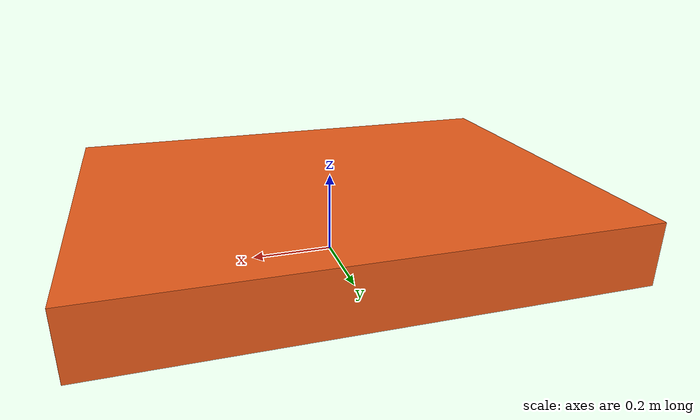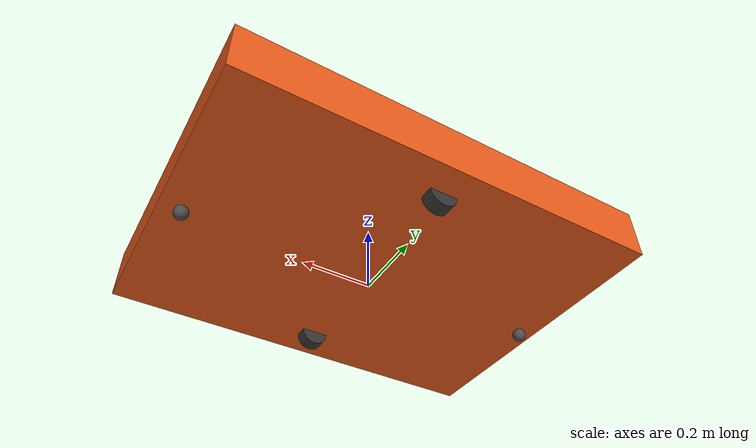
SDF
<?xml version="1.0" ?>
<sdf version="1.9">
  <model name="Addverb_Quadron">
    <self_collide>false</self_collide>

    <!-- ══ Chassis ══ -->
    <link name="chassis">
      <pose>0 0 0.115000 0 0 0</pose>
      <inertial>
        <mass>80.0</mass>
        <inertia>
          <ixx>5.550000</ixx><ixy>0</ixy><ixz>0</ixz>
          <iyy>9.750000</iyy><iyz>0</iyz>
          <izz>15.000000</izz>
        </inertia>
      </inertial>
      <visual name="chassis_visual">
        <geometry><box><size>1.2 0.9 0.15</size></box></geometry>
        <material>
          <ambient>0.9 0.35 0.1 1.0</ambient>
          <diffuse>0.9 0.35 0.1 1.0</diffuse>
        </material>
      </visual>
      <collision name="chassis_collision">
        <geometry><box><size>1.2 0.9 0.15</size></box></geometry>
      </collision>
    </link>

    <!-- ══ Left Wheel ══ -->
    <link name="left_wheel">
      <pose>0 0.350000 0.040000 1.5707963268 0 0</pose>
      <inertial>
        <mass>1.0</mass>
        <inertia>
          <ixx>0.000533</ixx><ixy>0</ixy><ixz>0</ixz>
          <iyy>0.000533</iyy><iyz>0</iyz>
          <izz>0.000800</izz>
        </inertia>
      </inertial>
      <visual name="left_wheel_visual">
        <geometry><cylinder><radius>0.04</radius><length>0.04</length></cylinder></geometry>
        <material><ambient>0.2 0.2 0.2 1.0</ambient><diffuse>0.2 0.2 0.2 1.0</diffuse></material>
      </visual>
      <collision name="left_wheel_collision">
        <geometry><cylinder><radius>0.04</radius><length>0.04</length></cylinder></geometry>
        <surface><friction><ode><mu>1.0</mu><mu2>1.0</mu2></ode></friction></surface>
      </collision>
    </link>
    <joint name="left_wheel_joint" type="revolute">
      <parent>chassis</parent><child>left_wheel</child>
      <axis><xyz>0 0 1</xyz><limit><lower>-1e16</lower><upper>1e16</upper></limit></axis>
    </joint>

    <!-- ══ Right Wheel ══ -->
    <link name="right_wheel">
      <pose>0 -0.350000 0.040000 1.5707963268 0 0</pose>
      <inertial>
        <mass>1.0</mass>
        <inertia>
          <ixx>0.000533</ixx><ixy>0</ixy><ixz>0</ixz>
          <iyy>0.000533</iyy><iyz>0</iyz>
          <izz>0.000800</izz>
        </inertia>
      </inertial>
      <visual name="right_wheel_visual">
        <geometry><cylinder><radius>0.04</radius><length>0.04</length></cylinder></geometry>
        <material><ambient>0.2 0.2 0.2 1.0</ambient><diffuse>0.2 0.2 0.2 1.0</diffuse></material>
      </visual>
      <collision name="right_wheel_collision">
        <geometry><cylinder><radius>0.04</radius><length>0.04</length></cylinder></geometry>
        <surface><friction><ode><mu>1.0</mu><mu2>1.0</mu2></ode></friction></surface>
      </collision>
    </link>
    <joint name="right_wheel_joint" type="revolute">
      <parent>chassis</parent><child>right_wheel</child>
      <axis><xyz>0 0 1</xyz><limit><lower>-1e16</lower><upper>1e16</upper></limit></axis>
    </joint>

    <!-- ══ Front Caster ══ -->
    <link name="front_caster">
      <pose>0.540000 0 0.020000 0 0 0</pose>
      <inertial>
        <mass>0.5</mass>
        <inertia><ixx>0.000281</ixx><ixy>0</ixy><ixz>0</ixz><iyy>0.000281</iyy><iyz>0</iyz><izz>0.000281</izz></inertia>
      </inertial>
      <visual name="front_caster_visual">
        <geometry><sphere><radius>0.020000</radius></sphere></geometry>
        <material><ambient>0.3 0.3 0.3 1.0</ambient><diffuse>0.3 0.3 0.3 1.0</diffuse></material>
      </visual>
      <collision name="front_caster_collision">
        <geometry><sphere><radius>0.020000</radius></sphere></geometry>
        <surface><friction><ode><mu>0.01</mu><mu2>0.01</mu2></ode></friction></surface>
      </collision>
    </link>
    <joint name="front_caster_joint" type="ball"><parent>chassis</parent><child>front_caster</child></joint>

    <!-- ══ Rear Caster ══ -->
    <link name="rear_caster">
      <pose>-0.540000 0 0.020000 0 0 0</pose>
      <inertial>
        <mass>0.5</mass>
        <inertia><ixx>0.000281</ixx><ixy>0</ixy><ixz>0</ixz><iyy>0.000281</iyy><iyz>0</iyz><izz>0.000281</izz></inertia>
      </inertial>
      <visual name="rear_caster_visual">
        <geometry><sphere><radius>0.020000</radius></sphere></geometry>
        <material><ambient>0.3 0.3 0.3 1.0</ambient><diffuse>0.3 0.3 0.3 1.0</diffuse></material>
      </visual>
      <collision name="rear_caster_collision">
        <geometry><sphere><radius>0.020000</radius></sphere></geometry>
        <surface><friction><ode><mu>0.01</mu><mu2>0.01</mu2></ode></friction></surface>
      </collision>
    </link>
    <joint name="rear_caster_joint" type="ball"><parent>chassis</parent><child>rear_caster</child></joint>

    <!-- ══ DiffDrive Plugin ══ -->
    <plugin filename="gz-sim-diff-drive-system" name="gz::sim::systems::DiffDrive">
      <left_joint>left_wheel_joint</left_joint>
      <right_joint>right_wheel_joint</right_joint>
      <wheel_separation>0.7</wheel_separation>
      <wheel_radius>0.04</wheel_radius>
      <max_linear_acceleration>0.5</max_linear_acceleration>
      <max_angular_velocity>0.0</max_angular_velocity>
      <topic>cmd_vel</topic>
      <odom_topic>odom</odom_topic>
      <tf_topic>tf</tf_topic>
      <frame_id>odom</frame_id>
      <child_frame_id>chassis</child_frame_id>
      <odom_publish_frequency>15</odom_publish_frequency>
    </plugin>

    <plugin filename="gz-sim-joint-state-publisher-system" name="gz::sim::systems::JointStatePublisher"/>
  </model>
</sdf>
